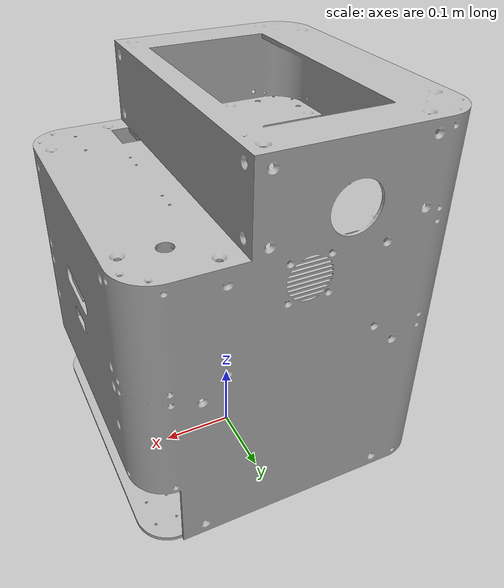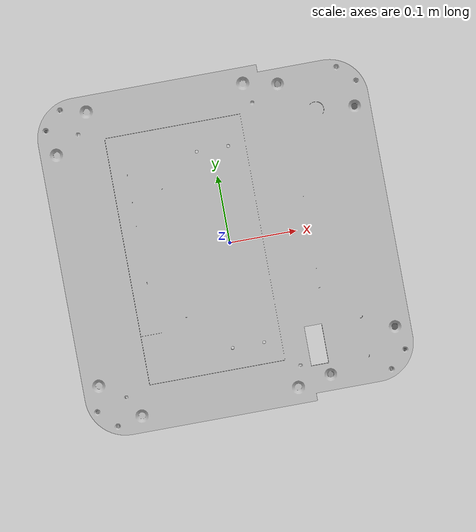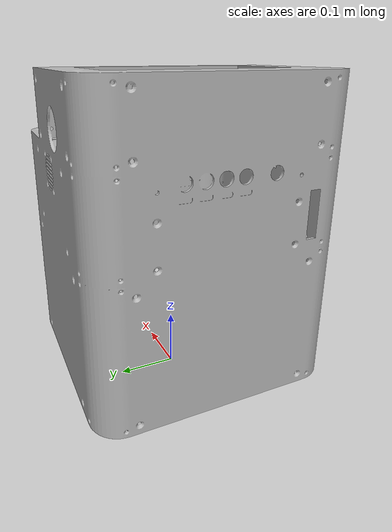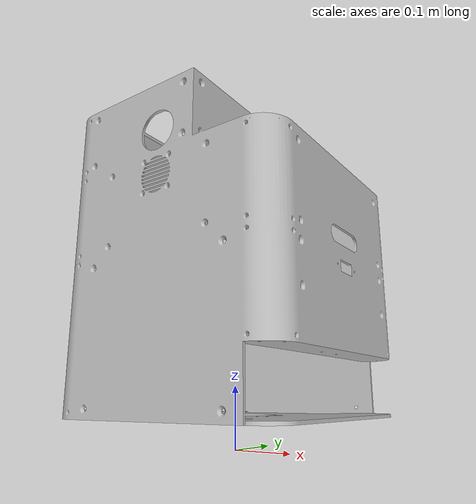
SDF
<sdf version='1.7'>
  <model name='testz'>
    <link name='base_footprint'>
      <inertial>
        <pose>0 0 0.05 0 -0 0</pose>
        <mass>550</mass>
        <inertia>
          <ixx>220</ixx>
          <ixy>0</ixy>
          <ixz>0</ixz>
          <iyy>220</iyy>
          <iyz>0</iyz>
          <izz>220</izz>
        </inertia>
      </inertial>
      <collision name='base_footprint_fixed_joint_lump__base_collision_collision'>
        <pose>0 0 0.05 0 -0 0</pose>
        <geometry>
          <mesh>
            <scale>0.01 0.01 0.01</scale>
            <uri>model://warehousebot_simulation/meshes/bot_chassis.stl</uri>
          </mesh>
        </geometry>
      </collision>
      <visual name='base_footprint_fixed_joint_lump__base_link_visual'>
        <pose>0 0 0.05 0 -0 0</pose>
        <geometry>
          <mesh>
            <scale>0.01 0.01 0.01</scale>
            <uri>model://warehousebot_simulation/meshes/bot_chassis.stl</uri>
          </mesh>
        </geometry>
      </visual>
    </link>
  </model>
</sdf>
